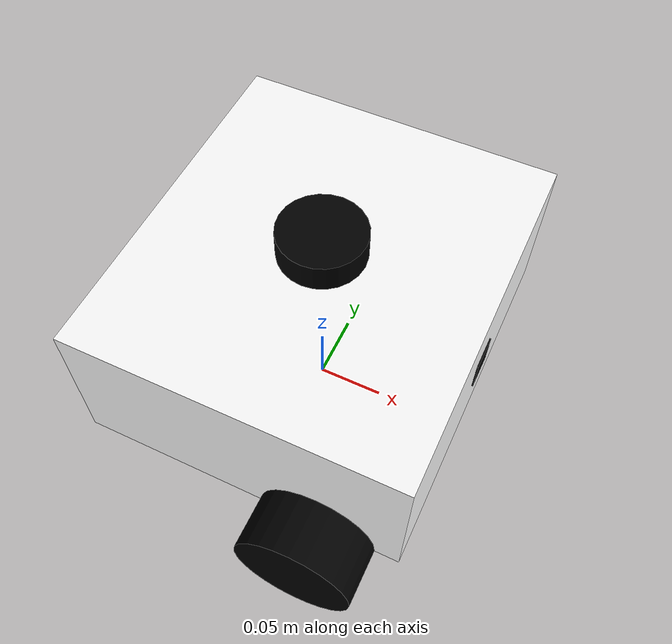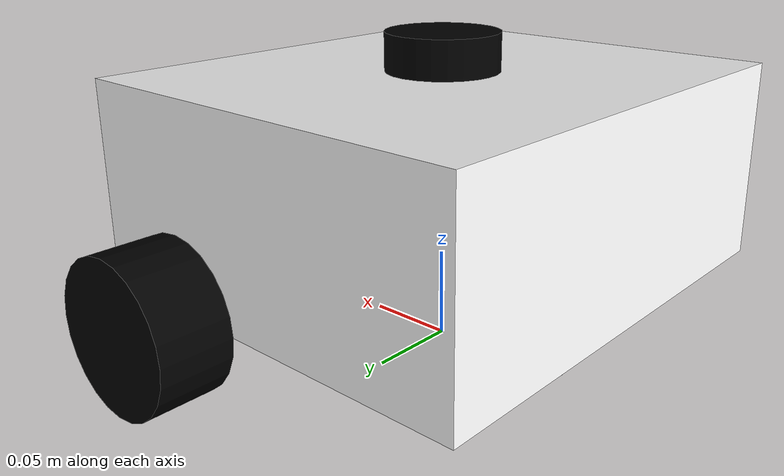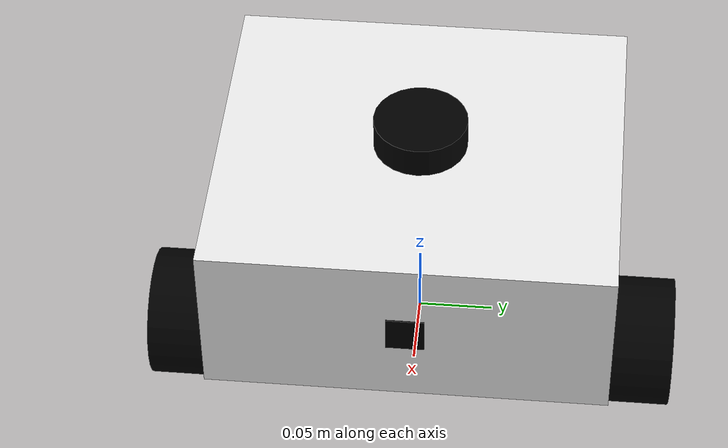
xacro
<?xml version="1.0"?>
<robot xmlns:xacro="http://www.ros.org/wiki/xacro" name="jennybot">
    <xacro:include filename="core.urdf.xacro"/>
    <xacro:include filename="gazebo_control.urdf.xacro"/>
    <xacro:include filename="ros2_control.urdf.xacro"/>
    <xacro:include filename="inertia_macros.urdf.xacro"/>
    <xacro:include filename="lidar.urdf.xacro"/>
    <xacro:include filename="imu.urdf.xacro"/>
    <xacro:include filename="camera.urdf.xacro"/>
</robot>

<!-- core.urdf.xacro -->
<robot xmlns:xacro="http://www.ros.org/wiki/xacro">
    <xacro:arg name="is_ignition" default="true"/>

    <xacro:arg name="is_sim" default="true"/>

    <xacro:property name="body_length" value="0.238"/>
    <xacro:property name="body_width" value="0.265"/>
    <xacro:property name="body_height" value="0.112"/>
    <xacro:property name="wheel_radius" value="0.042"/>
    <xacro:property name="wheel_width" value="0.04"/>
    <xacro:property name="PI" value="3.14159265359"/>
    <xacro:property name="wheel_offset_y" value="0.02"/>

    <xacro:include filename="inertia_macros.urdf.xacro"/>

    <material name="white">
        <color rgba="1.0 1.0 1.0 1.0"/>
    </material>
    <material name="black">
        <color rgba="0.0 0.0 0.0 1.0"/>
    </material>

    <link name="base_footprint"/>

    <link name="base_link">
        <visual>
            <origin xyz="0.0 0.0 0.0" rpy="0.0 0.0 0.0"/>
            <geometry>
                <box size="${body_length} ${body_width} ${body_height}"/>
            </geometry>
            <material name="white"/>
        </visual>
        <collision>
            <origin xyz="0.0 0.0 0.0" rpy="0.0 0.0 0.0"/>
            <geometry>
                <box size="${body_length} ${body_width} ${body_height}"/>
            </geometry>
            <material name="white"/>
        </collision>
        <xacro:inertial_box mass="2.5" x="${body_length}" y="${body_width}" z="${body_height}">
            <origin xyz="0.0 0.0 0.0" rpy="0.0 0.0 0.0"/>
        </xacro:inertial_box>
    </link>

    <joint name="base_base_link_joint" type="fixed">
        <parent link="base_footprint"/>
        <child link="base_link"/>
        <origin xyz="0.0 0.0 ${body_height/2 + wheel_radius}" rpy="0.0 0.0 0.0"/>
    </joint>

    <link name="left_wheel_link">
        <visual>
            <origin xyz="0.0 0.0 0.0" rpy="${PI/2} 0.0 0.0"/>
            <geometry>
                <cylinder radius="${wheel_radius}" length="${wheel_width}"/>
            </geometry>
            <material name="black"/>
        </visual>
        <collision>
                <origin xyz="0.0 0.0 0.0" rpy="${PI/2} 0.0 0.0"/>
            <geometry>
                <cylinder radius="${wheel_radius}" length="${wheel_width}"/>
            </geometry>
            <material name="black"/>
        </collision>
        <xacro:inertial_cylinder mass="0.5" length="${wheel_width}" radius="${wheel_radius}">
            <origin xyz="0.0 0.0 0.0" rpy="${PI/2} 0.0 0.0"/>
        </xacro:inertial_cylinder>
    </link>

    <joint name="left_wheel_joint" type="continuous">
        <parent link="base_link"/>
        <child link="left_wheel_link"/>
        <origin xyz="${body_length/4} ${body_width/2 + wheel_offset_y} ${-body_height/2}" rpy="0.0 0.0 0.0"/>
        <axis xyz="0 1 0"/>
    </joint>

    <link name="right_wheel_link">
        <visual>
            <origin xyz="0.0 0.0 0.0" rpy="${PI/2} 0.0 0.0"/>
            <geometry>
                <cylinder radius="${wheel_radius}" length="${wheel_width}"/>
            </geometry>
            <material name="black"/>
        </visual>
        <collision>
                <origin xyz="0.0 0.0 0.0" rpy="${PI/2} 0.0 0.0"/>
            <geometry>
                <cylinder radius="${wheel_radius}" length="${wheel_width}"/>
            </geometry>
            <material name="black"/>
        </collision>
        <xacro:inertial_cylinder mass="0.5" length="${wheel_width}" radius="${wheel_radius}">
            <origin xyz="0.0 0.0 0.0" rpy="${PI/2} 0.0 0.0"/>
        </xacro:inertial_cylinder>
    </link>

    <joint name="right_wheel_joint" type="continuous">
        <parent link="base_link"/>
        <child link="right_wheel_link"/>
        <origin xyz="${body_length/4} ${-body_width/2 - wheel_offset_y} ${-body_height/2}" rpy="0.0 0.0 0.0"/>
        <axis xyz="0 1 0"/>
    </joint>

    <link name="caster_wheel">
        <visual>
            <origin xyz="0.0 0.0 0.0" rpy="0.0 0.0 0.0"/>
            <geometry>
                <sphere radius="0.03"/>
            </geometry>
        </visual>
        <collision>
            <origin xyz="0.0 0.0 0.0" rpy="0.0 0.0 0.0"/>
            <geometry>
                <sphere radius="${wheel_radius/2}"/>
            </geometry>
        </collision>
        <xacro:inertial_sphere mass="0.5" radius="${wheel_radius/2}">
            <origin xyz="0 0 0" rpy="0 0 0"/>
        </xacro:inertial_sphere>
    </link>

    <joint name="caster_base_joint" type="fixed">
        <parent link="base_link"/>
        <child link="caster_wheel"/>
        <origin xyz="${-body_length/4} 0.0 ${-body_height/2 - wheel_radius/2}" rpy="0.0 0.0 0.0"/>

    </joint>

</robot>

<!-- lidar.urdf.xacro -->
<robot xmlns:xacro="http://www.ros.org/wiki/xacro" >

    <joint name="laser_joint" type="fixed">
        <parent link="base_link"/>
        <child link="laser_frame"/>
        <origin xyz="0 0 ${body_height/2 + wheel_radius/4}" rpy="0 0 0"/>
    </joint>

    <link name="laser_frame">
        <visual>
            <geometry>
                <cylinder radius="0.031" length="0.021"/>
            </geometry>
            <material name="black"/>
        </visual>
        <collision>
            <geometry>
                <cylinder radius="0.031" length="0.021"/>
            </geometry>
        </collision>
        <xacro:inertial_cylinder mass="0.1" length="0.021" radius="0.031">
            <origin xyz="0 0 0" rpy="0 0 0"/>
        </xacro:inertial_cylinder>
    </link>

    <gazebo reference="laser_frame">
        <material>Gazebo/Black</material>

        <sensor name="laser" type="ray">
            <pose> 0 0 0 0 0 0 </pose>
            <visualize>true</visualize>
            <update_rate>10</update_rate>
            <ray>
                <scan>
                    <horizontal>
                        <samples>360</samples>
                        <min_angle>-3.14</min_angle>
                        <max_angle>3.14</max_angle>
                    </horizontal>
                </scan>
                <range>
                    <min>0.3</min>
                    <max>12</max>
                </range>
            </ray>
            <plugin name="laser_controller" filename="libgazebo_ros_ray_sensor.so">
                <ros>
                    <argument>~/out:=scan</argument>
                </ros>
                <output_type>sensor_msgs/LaserScan</output_type>
                <frame_name>laser_frame</frame_name>
            </plugin>
        </sensor>
    </gazebo>

</robot>

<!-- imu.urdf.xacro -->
<robot xmlns:xacro="http://www.ros.org/wiki/xacro">

    <link name="imu_link">
        <visual>
            <origin xyz="0.0 0.0 0.0" rpy="0.0 0.0 0.0"/>
            <geometry>
                <box size="0.01 0.01 0.001"/>
            </geometry>
            <material name="black"/>
        </visual>
        <collision>
            <origin xyz="0.0 0.0 0.0" rpy="0.0 0.0 0.0"/>
            <geometry>
                <box size="0.01 0.01 0.001"/>
            </geometry>
        </collision>
        <xacro:inertial_box mass="0.001" x="0.01" y="0.01" z="0.001">
            <origin xyz="0.0 0.0 0.0" rpy="0.0 0.0 0.0"/>
        </xacro:inertial_box>
    </link>

    <joint name="base_imu_joint" type="fixed">
        <parent link="base_link"/>
        <child link="imu_link"/>
        <origin xyz="0.0 0.0 0.0" rpy="0.0 0.0 0.0"/>
    </joint>

</robot>

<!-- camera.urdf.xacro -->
<robot xmlns:xacro="http://www.ros.org/wiki/xacro" >

    <joint name="camera_joint" type="fixed">
        <parent link="base_link"/>
        <child link="camera_link"/>
        <origin xyz="${body_length/2} 0.0 0.0" rpy="0 0 0"/>
    </joint>

    <link name="camera_link">
        <visual>
            <origin xyz="0 0 0" rpy="0 ${pi/2} 0"/>
            <geometry>
                <box size="0.025 0.025 0.002"/>
            </geometry>
            <material name="black"/>
        </visual>
        <collision>
            <origin xyz="0 0 0" rpy="0 ${pi/2} 0"/>
            <geometry>
                <box size="0.025 0.025 0.002"/>
            </geometry>
        </collision>
        <xacro:inertial_box mass="0.05" x="0.025" y="0.025" z="0.002">
            <origin  xyz="0 0 0" rpy="0 ${pi/2} 0"/>
        </xacro:inertial_box>
    </link>

    <joint name="camera_optical_joint" type="fixed">
        <parent link="camera_link"/>
        <child link="camera_link_optical"/>
        <origin xyz="0 0 0" rpy="${-pi/2} 0 ${-pi/2}"/>
    </joint>

    <link name="camera_link_optical"></link>

    <gazebo reference="camera_link">
        <material>Gazebo/Black</material>

        <sensor name="camera" type="camera">
            <pose> 0 0 0 0 0 0 </pose>
            <visualize>true</visualize>
            <update_rate>10</update_rate>
            <camera>
                <horizontal_fov>1.089</horizontal_fov>
                <image>
                    <format>R8G8B8</format>
                    <width>640</width>
                    <height>480</height>
                </image>
                <clip>
                    <near>0.05</near>
                    <far>8.0</far>
                </clip>
            </camera>
            <plugin name="camera_controller" filename="libgazebo_ros_camera.so">
                <frame_name>camera_link_optical</frame_name>
            </plugin>
        </sensor>
    </gazebo>

</robot>
